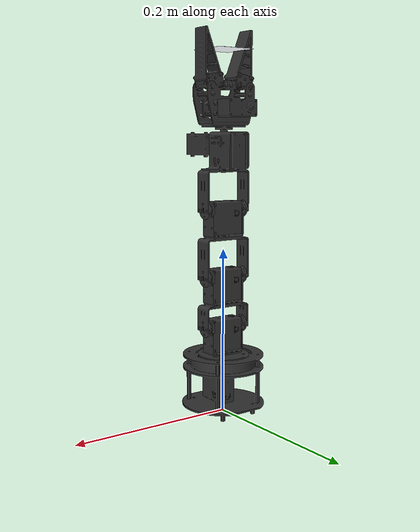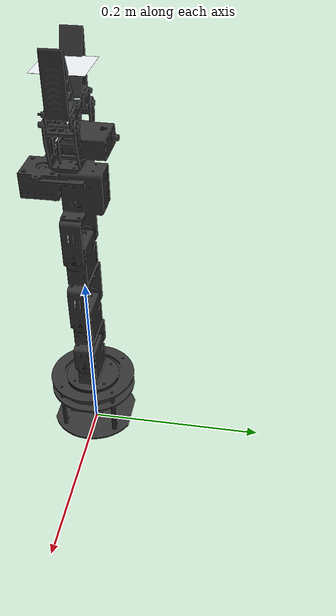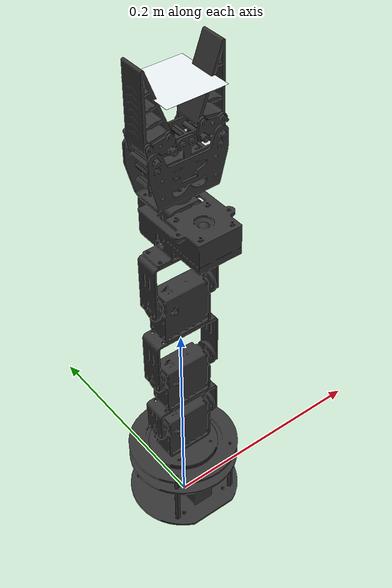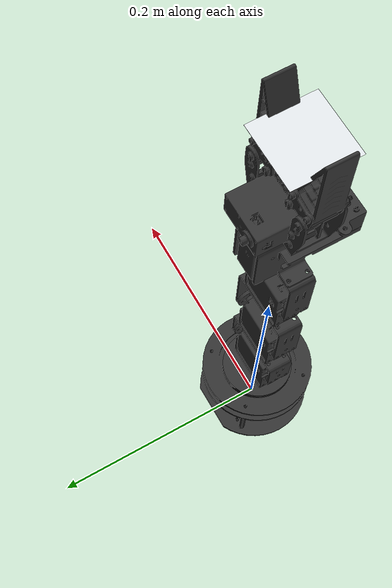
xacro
<?xml version="1.0"?>

<robot name="s2a_arm" xmlns:xacro="http://www.ros.org/wiki/xacro">

	<xacro:include filename="$(find s2a_description)/urdf/magic_arm.urdf" />
	<xacro:include filename="$(find s2a_description)/urdf/arm_controller.xacro" />
	<xacro:transmission_block joint_name="joint_1"/>
	<xacro:transmission_block joint_name="joint_2"/>
	<xacro:transmission_block joint_name="joint_3"/>
	<xacro:transmission_block joint_name="joint_4"/>
	<xacro:transmission_block joint_name="joint_5"/>
	<xacro:transmission_block joint_name="claw_joint_1"/>
	<xacro:transmission_block joint_name="claw_joint_2"/>

</robot>

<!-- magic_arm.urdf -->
<robot name="s2a_body">

  <link name="base_footprint">
  </link>

  <link name="arm_base_link">
    <inertial>
      <origin xyz="-1.7947E-07 -0.0018392 0.042093" rpy="0 0 0" />
      <mass value="14.14029" />
      <inertia ixx="0.00016721" ixy="-1.4903E-10" ixz="-3.0653E-10" iyy="0.00016551" iyz="-2.4534E-06" izz="0.0001699" />
    </inertial>
    <visual>
      <origin xyz="0 0 0" rpy="0 0 0" />
      <geometry>
        <mesh filename="package://s2a_description/meshes/arm/arm_base_link.STL" />
      </geometry>
      <material name="">
        <color rgba="0.2 0.2 0.2 1" />
      </material>
    </visual>
    <collision>
      <origin xyz="0 0 0" rpy="0 0 0" />
      <geometry>
        <mesh filename="package://s2a_description/meshes/arm/arm_base_link.STL" />
      </geometry>
    </collision>
  </link>
  <joint name="arm_joint" type="fixed">
    <origin xyz="0.0 0.0 0.0" rpy="0 0 0" />
    <parent link="base_footprint" />
    <child link="arm_base_link" />
    <axis xyz="0 0 0" />
  </joint>

  <link name="link_1">
    <inertial>
      <origin xyz="0.00015999 -3.7029E-07 0.0067201" rpy="0 0 0" />
      <mass value="0.068148" />
      <inertia ixx="3.0609E-05" ixy="-5.9099E-11" ixz="-1.3841E-07" iyy="3.6584E-05" iyz="4.9301E-10" izz="2.3547E-05" />
    </inertial>
    <visual>
      <origin xyz="0 0 0" rpy="0 0 0" />
      <geometry>
        <mesh filename="package://s2a_description/meshes/arm/link_1.STL" />
      </geometry>
      <material name="">
        <color rgba="0.2 0.2 0.2 1" />
      </material>
    </visual>
    <collision>
      <origin xyz="0 0 0" rpy="0 0 0" />
      <geometry>
        <mesh filename="package://s2a_description/meshes/arm/link_1.STL" />
      </geometry>
    </collision>
  </link>
  <joint name="joint_1" type="revolute">
    <origin xyz="0 0 0.072247" rpy="0 0 0" />
    <parent link="arm_base_link" />
    <child link="link_1" />
    <axis xyz="0 0 1" />
    <limit lower="-1.8" upper="1.8" effort="50" velocity="2" />
  </joint>

  <link name="link_2">
    <inertial>
      <origin xyz="0.028477 -5.0821E-07 0.038913" rpy="0 0 0" />
      <mass value="0.049654" />
      <inertia ixx="1.8351E-05" ixy="-6.0792E-11" ixz="-6.4071E-08" iyy="3.1671E-05" iyz="3.6197E-10" izz="1.6517E-05" />
    </inertial>
    <visual>
      <origin xyz="0 0 0" rpy="0 0 0" />
      <geometry>
        <mesh filename="package://s2a_description/meshes/arm/link_2.STL" />
      </geometry>
      <material name="">
        <color rgba="0.2 0.2 0.2 1" />
      </material>
    </visual>
    <collision>
      <origin xyz="0 0 0" rpy="0 0 0" />
      <geometry>
        <mesh filename="package://s2a_description/meshes/arm/link_2.STL" />
      </geometry>
    </collision>
  </link>
  <joint name="joint_2" type="revolute">
    <origin xyz="-0.028151 0 0.034" rpy="0 0 0" />
    <parent link="link_1" />
    <child link="link_2" />
    <axis xyz="1 0 0" />
    <limit lower="-1.8" upper="1.8" effort="50" velocity="3" />
  </joint>

  <link name="link_3">
    <inertial>
      <origin xyz="0.028363 -4.679E-07 0.054247" rpy="0 0 0" />
      <mass value="0.053931" />
      <inertia ixx="3.1912E-05" ixy="-6.0429E-11" ixz="-9.8626E-08" iyy="4.873E-05" iyz="4.797E-10" izz="2.0341E-05" />
    </inertial>
    <visual>
      <origin xyz="0 0 0" rpy="0 0 0" />
      <geometry>
        <mesh filename="package://s2a_description/meshes/arm/link_3.STL" />
      </geometry>
      <material name="">
        <color rgba="0.2 0.2 0.2 1" />
      </material>
    </visual>
    <collision>
      <origin xyz="0 0 0" rpy="0 0 0" />
      <geometry>
        <mesh filename="package://s2a_description/meshes/arm/link_3.STL" />
      </geometry>
    </collision>
  </link>
  <joint name="joint_3" type="revolute">
    <origin xyz="9.8516E-05 0 0.061" rpy="0 0 0" />
    <parent link="link_2" />
    <child link="link_3" />
    <axis xyz="1 0 0" />
    <limit lower="-1.8" upper="1.8" effort="50" velocity="3" />
  </joint>

  <link name="link_4">
    <inertial>
      <origin xyz="0.028255 -0.0047504 0.06611" rpy="0 0 0" />
      <mass value="0.10537" />
      <inertia ixx="9.6221E-05" ixy="-3.6252E-10" ixz="2.7529E-08" iyy="7.3811E-05" iyz="7.9136E-06" izz="6.9537E-05" />
    </inertial>
    <visual>
      <origin xyz="0 0 0" rpy="0 0 0" />
      <geometry>
        <mesh filename="package://s2a_description/meshes/arm/link_4.STL" />
      </geometry>
      <material name="">
        <color rgba="0.2 0.2 0.2 1" />
      </material>
    </visual>
    <collision>
      <origin xyz="0 0 0" rpy="0 0 0" />
      <geometry>
        <mesh filename="package://s2a_description/meshes/arm/link_4.STL" />
      </geometry>
    </collision>
  </link>
  <joint name="joint_4" type="revolute">
    <origin xyz="0 0 0.081" rpy="0 0 0" />
    <parent link="link_3" />
    <child link="link_4" />
    <axis xyz="1 0 0" />
    <limit lower="-1.8" upper="1.8" effort="50" velocity="3" />
  </joint>

  <link name="link_5">
    <inertial>
      <origin xyz="4.4212E-05 0.0041269 0.025698" rpy="0 0 0" />
      <mass value="0.098063" />
      <inertia ixx="3.7917E-05" ixy="1.4713E-07" ixz="-1.1994E-07" iyy="5.5952E-05" iyz="2.3438E-06" izz="5.2518E-05" />
    </inertial>
    <visual>
      <origin xyz="0 0 0" rpy="0 0 0" />
      <geometry>
        <mesh filename="package://s2a_description/meshes/arm/link_5.STL" />
      </geometry>
      <material name="">
        <color rgba="0.2 0.2 0.2 1" />
      </material>
    </visual>
    <collision>
      <origin xyz="0 0 0" rpy="0 0 0" />
      <geometry>
        <mesh filename="package://s2a_description/meshes/arm/link_5.STL" />
      </geometry>
    </collision>
  </link>
  <joint name="joint_5" type="revolute">
    <origin xyz="0.02825 0 0.0975" rpy="0 0 0" />
    <parent link="link_4" />
    <child link="link_5" />
    <axis xyz="0 0 -1" />
    <limit lower="-1.8" upper="1.8" effort="50" velocity="3" />
  </joint>

  <link name = "gripper_center_link">
    <visual>
      <geometry>
        <box size="0.05 0.05 0.0001"/>
      </geometry>
      <origin xyz="0.0 0.0 0.01" rpy="0.0 0.0 0.0"/>
      <material name="">
        <color rgba="0.898039215686275 0.917647058823529 0.929411764705882 1" />
      </material>
    </visual>
    <collision>
      <geometry>
        <box size="0.05 0.05 0.01"/>
      </geometry>
      <origin xyz="0.0 0.0 0.01" rpy="0.0 0.0 0.0"/>
    </collision>
    <inertial>
      <mass value="0.00000001"/>
      <inertia ixx="0.0001" ixy="0.0" ixz="0.0" iyy="0.0001" iyz="0.0" izz="0.0001" />
    </inertial>
  </link>
  <joint name="gripper_centor_joint" type = "fixed">
    <parent link="link_5"/>
    <child link="gripper_center_link"/>
    <origin xyz="0.0 0.0 0.08" rpy="0.0 0.0 0.0"/>
  </joint>

  <link name="claw_link_1">
    <inertial>
      <origin xyz="0.0054256 -0.015308 0.019147" rpy="0 0 0" />
      <mass value="0.018231" />
      <inertia ixx="6.9914E-06" ixy="-3.7017E-08" ixz="1.3043E-06" iyy="6.7797E-06" iyz="4.9174E-08" izz="2.5386E-06" />
    </inertial>
    <visual>
      <origin xyz="0 0 0" rpy="0 0 0" />
      <geometry>
        <mesh filename="package://s2a_description/meshes/arm/claw_link_1.STL" />
      </geometry>
      <material name="">
        <color rgba="0.2 0.2 0.2 1" />
      </material>
    </visual>
    <collision>
      <origin xyz="0 0 0" rpy="0 0 0" />
      <geometry>
        <mesh filename="package://s2a_description/meshes/arm/claw_link_1.STL" />
      </geometry>
    </collision>
  </link>
  <joint name="claw_joint_1" type="fixed">
    <origin xyz="-0.028 0.015 0.0462" rpy="0 0 0" />
    <parent link="link_5" />
    <child link="claw_link_1" />
    <axis xyz="0 -1 0" />
    <limit lower="-1.5" upper="1.5" effort="10" velocity="3" />
  </joint>

  <link name="claw_link_2">
    <inertial>
      <origin xyz="-0.0054256 -0.015308 0.019147" rpy="0 0 0" />
      <mass value="0.018231" />
      <inertia ixx="6.9914E-06" ixy="3.7016E-08" ixz="-1.3043E-06" iyy="6.7797E-06" iyz="4.9173E-08" izz="2.5386E-06" />
    </inertial>
    <visual>
      <origin xyz="0 0 0" rpy="0 0 0" />
      <geometry>
        <mesh filename="package://s2a_description/meshes/arm/claw_link_2.STL" />
      </geometry>
      <material name="">
        <color rgba="0.2 0.2 0.2 1" />
      </material>
    </visual>
    <collision>
      <origin xyz="0 0 0" rpy="0 0 0" />
      <geometry>
        <mesh filename="package://s2a_description/meshes/arm/claw_link_2.STL" />
      </geometry>
    </collision>
  </link>
  <joint name="claw_joint_2" type="fixed">
    <origin xyz="0.027609 0.015 0.0462" rpy="0 0 0" />
    <parent link="link_5" />
    <child link="claw_link_2" />
    <axis xyz="0 -1 0" />
    <limit lower="-1.5" upper="1.5" effort="10" velocity="3" />
  </joint>

</robot>
